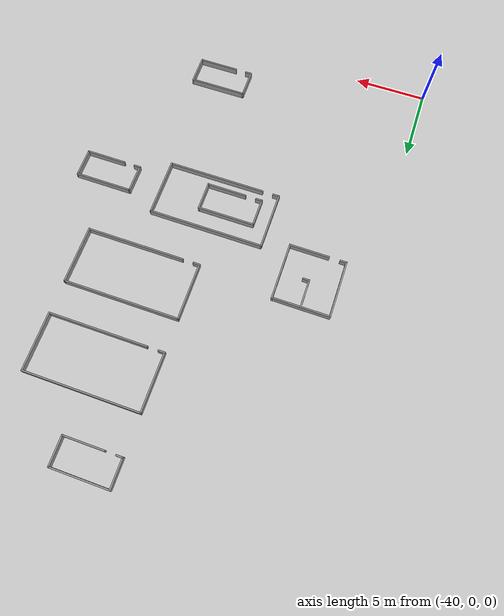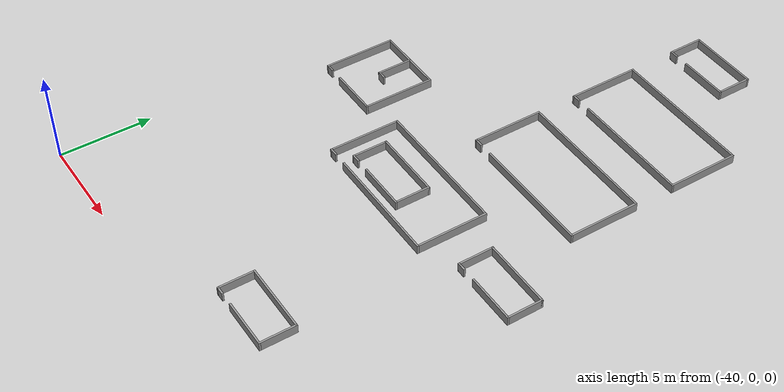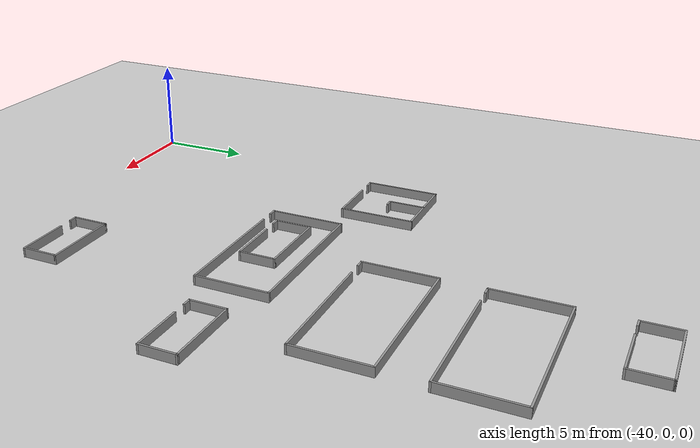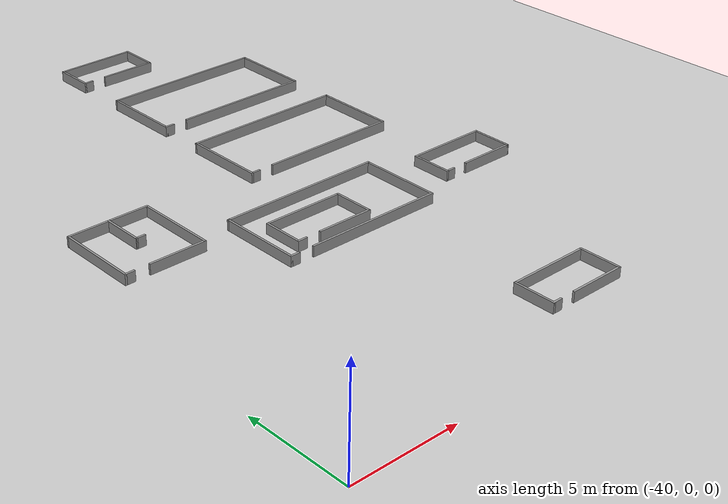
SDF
<sdf version="1.6">
 <world name="default">
  <model name="ground_plane">
   <static>1</static>
   <link name="link">
    <collision name="collision">
     <geometry><plane><normal>0 0 1</normal><size>80 80</size></plane></geometry>
     <surface>
      <contact><collide_bitmask>65535</collide_bitmask></contact>
      <friction><ode><mu>100</mu><mu2>50</mu2></ode></friction>
     </surface>
     <max_contacts>15</max_contacts>
    </collision>
    <visual name="visual">
     <cast_shadows>0</cast_shadows>
     <geometry><plane><normal>0 0 1</normal><size>80 80</size></plane></geometry>
     <material>
      <script><uri>file://media/materials/scripts/gazebo.material</uri><name>Gazebo/Grey</name></script>
     </material>
    </visual>
   </link>
  </model>
  <model name="shape3">
   <pose>-25.1 26.1 0 0 -0 0</pose>
   <link name="Wall_11">
    <collision name="Wall_11_Collision">
     <geometry><box><size>4 0.1 0.5</size></box></geometry>
     <pose>0 0 0.25 0 -0 0</pose>
    </collision>
    <visual name="Wall_11_Visual">
     <pose>0 0 0.25 0 -0 0</pose>
     <geometry><box><size>4 0.1 0.5</size></box></geometry>
     <material>
      <script><uri>file://media/materials/scripts/gazebo.material</uri><name>Gazebo/Grey</name></script>
      <ambient>1 1 1 1</ambient>
     </material>
     <meta><layer>0</layer></meta>
    </visual>
    <pose>-3.95 0 0 0 -0 -1.5708</pose>
   </link>
   <link name="Wall_12">
    <collision name="Wall_12_Collision">
     <geometry><box><size>0.5 0.1 0.5</size></box></geometry>
     <pose>0 0 0.25 0 -0 0</pose>
    </collision>
    <visual name="Wall_12_Visual">
     <pose>0 0 0.25 0 -0 0</pose>
     <geometry><box><size>0.5 0.1 0.5</size></box></geometry>
     <material>
      <script><uri>file://media/materials/scripts/gazebo.material</uri><name>Gazebo/Grey</name></script>
      <ambient>1 1 1 1</ambient>
     </material>
     <meta><layer>0</layer></meta>
    </visual>
    <pose>-3.75 -1.95 0 0 -0 0</pose>
   </link>
   <link name="Wall_7">
    <collision name="Wall_7_Collision">
     <geometry><box><size>8 0.1 0.5</size></box></geometry>
     <pose>0 0 0.25 0 -0 0</pose>
    </collision>
    <visual name="Wall_7_Visual">
     <pose>0 0 0.25 0 -0 0</pose>
     <geometry><box><size>8 0.1 0.5</size></box></geometry>
     <material>
      <script><uri>file://media/materials/scripts/gazebo.material</uri><name>Gazebo/Grey</name></script>
      <ambient>1 1 1 1</ambient>
     </material>
     <meta><layer>0</layer></meta>
    </visual>
    <pose>-0 1.95 0 0 -0 0</pose>
   </link>
   <link name="Wall_8">
    <collision name="Wall_8_Collision">
     <geometry><box><size>4 0.1 0.5</size></box></geometry>
     <pose>0 0 0.25 0 -0 0</pose>
    </collision>
    <visual name="Wall_8_Visual">
     <pose>0 0 0.25 0 -0 0</pose>
     <geometry><box><size>4 0.1 0.5</size></box></geometry>
     <material>
      <script><uri>file://media/materials/scripts/gazebo.material</uri><name>Gazebo/Grey</name></script>
      <ambient>1 1 1 1</ambient>
     </material>
     <meta><layer>0</layer></meta>
    </visual>
    <pose>3.95 0 0 0 -0 -1.5708</pose>
   </link>
   <link name="Wall_9">
    <collision name="Wall_9_Collision">
     <geometry><box><size>6.8 0.1 0.5</size></box></geometry>
     <pose>0 0 0.25 0 -0 0</pose>
    </collision>
    <visual name="Wall_9_Visual">
     <pose>0 0 0.25 0 -0 0</pose>
     <geometry><box><size>6.8 0.1 0.5</size></box></geometry>
     <material>
      <script><uri>file://media/materials/scripts/gazebo.material</uri><name>Gazebo/Grey</name></script>
      <ambient>1 1 1 1</ambient>
     </material>
     <meta><layer>0</layer></meta>
    </visual>
    <pose>0.6 -1.95 0 0 -0 3.14159</pose>
   </link>
   <static>1</static>
  </model>
  <model name="shape4">
   <pose>-36.2 16.6 0 0 -0 0</pose>
   <link name="Wall_0">
    <collision name="Wall_0_Collision">
     <geometry><box><size>4 0.1 0.5</size></box></geometry>
     <pose>0 0 0.25 0 -0 0</pose>
    </collision>
    <visual name="Wall_0_Visual">
     <pose>0 0 0.25 0 -0 0</pose>
     <geometry><box><size>4 0.1 0.5</size></box></geometry>
     <material>
      <script><uri>file://media/materials/scripts/gazebo.material</uri><name>Gazebo/Grey</name></script>
      <ambient>1 1 1 1</ambient>
     </material>
     <meta><layer>0</layer></meta>
    </visual>
    <pose>-1.95 0 0 0 -0 -1.5708</pose>
   </link>
   <link name="Wall_1">
    <collision name="Wall_1_Collision">
     <geometry><box><size>0.5 0.1 0.5</size></box></geometry>
     <pose>0 0 0.25 0 -0 0</pose>
    </collision>
    <visual name="Wall_1_Visual">
     <pose>0 0 0.25 0 -0 0</pose>
     <geometry><box><size>0.5 0.1 0.5</size></box></geometry>
     <material>
      <script><uri>file://media/materials/scripts/gazebo.material</uri><name>Gazebo/Grey</name></script>
      <ambient>1 1 1 1</ambient>
     </material>
     <meta><layer>0</layer></meta>
    </visual>
    <pose>-1.75 -1.95 0 0 -0 0</pose>
   </link>
   <link name="Wall_3">
    <collision name="Wall_3_Collision">
     <geometry><box><size>4 0.1 0.5</size></box></geometry>
     <pose>0 0 0.25 0 -0 0</pose>
    </collision>
    <visual name="Wall_3_Visual">
     <pose>0 0 0.25 0 -0 0</pose>
     <geometry><box><size>4 0.1 0.5</size></box></geometry>
     <material>
      <script><uri>file://media/materials/scripts/gazebo.material</uri><name>Gazebo/Grey</name></script>
      <ambient>1 1 1 1</ambient>
     </material>
     <meta><layer>0</layer></meta>
    </visual>
    <pose>0 1.95 0 0 -0 0</pose>
   </link>
   <link name="Wall_4">
    <collision name="Wall_4_Collision">
     <geometry><box><size>4 0.1 0.5</size></box></geometry>
     <pose>0 0 0.25 0 -0 0</pose>
    </collision>
    <visual name="Wall_4_Visual">
     <pose>0 0 0.25 0 -0 0</pose>
     <geometry><box><size>4 0.1 0.5</size></box></geometry>
     <material>
      <script><uri>file://media/materials/scripts/gazebo.material</uri><name>Gazebo/Grey</name></script>
      <ambient>1 1 1 1</ambient>
     </material>
     <meta><layer>0</layer></meta>
    </visual>
    <pose>1.95 0 0 0 -0 -1.5708</pose>
   </link>
   <link name="Wall_5">
    <collision name="Wall_5_Collision">
     <geometry><box><size>2.8 0.1 0.5</size></box></geometry>
     <pose>0 0 0.25 0 -0 0</pose>
    </collision>
    <visual name="Wall_5_Visual">
     <pose>0 0 0.25 0 -0 0</pose>
     <geometry><box><size>2.8 0.1 0.5</size></box></geometry>
     <material>
      <script><uri>file://media/materials/scripts/gazebo.material</uri><name>Gazebo/Grey</name></script>
      <ambient>1 1 1 1</ambient>
     </material>
     <meta><layer>0</layer></meta>
    </visual>
    <pose>0.6 -1.95 0 0 -0 3.14159</pose>
   </link>
   <link name="Wall_7">
    <collision name="Wall_7_Collision">
     <geometry><box><size>2 0.1 0.5</size></box></geometry>
     <pose>0 0 0.25 0 -0 0</pose>
    </collision>
    <visual name="Wall_7_Visual">
     <pose>0 0 0.25 0 -0 0</pose>
     <geometry><box><size>2 0.1 0.5</size></box></geometry>
     <material>
      <script><uri>file://media/materials/scripts/gazebo.material</uri><name>Gazebo/Grey</name></script>
      <ambient>1 1 1 1</ambient>
     </material>
     <meta><layer>0</layer></meta>
    </visual>
    <pose>0.015 0.991 0 0 -0 -1.5708</pose>
   </link>
   <link name="Wall_8">
    <collision name="Wall_8_Collision">
     <geometry><box><size>0.5 0.1 0.5</size></box></geometry>
     <pose>0 0 0.25 0 -0 0</pose>
    </collision>
    <visual name="Wall_8_Visual">
     <pose>0 0 0.25 0 -0 0</pose>
     <geometry><box><size>0.5 0.1 0.5</size></box></geometry>
     <material>
      <script><uri>file://media/materials/scripts/gazebo.material</uri><name>Gazebo/Grey</name></script>
      <ambient>1 1 1 1</ambient>
     </material>
     <meta><layer>0</layer></meta>
    </visual>
    <pose>0.215 0.041 0 0 -0 0</pose>
   </link>
   <static>1</static>
  </model>
  <model name="shape2">
   <pose>-27.1 31.7 0 0 -0 0</pose>
   <link name="Wall_0">
    <collision name="Wall_0_Collision">
     <geometry><box><size>3.98685 0.1 0.5</size></box></geometry>
     <pose>0 0 0.25 0 -0 0</pose>
    </collision>
    <visual name="Wall_0_Visual">
     <pose>0 0 0.25 0 -0 0</pose>
     <geometry><box><size>3.98685 0.1 0.5</size></box></geometry>
     <material>
      <script><uri>file://media/materials/scripts/gazebo.material</uri><name>Gazebo/Grey</name></script>
      <ambient>1 1 1 1</ambient>
     </material>
     <meta><layer>0</layer></meta>
    </visual>
    <pose>0.003288 0.95 0 0 -0 0</pose>
   </link>
   <link name="Wall_1">
    <collision name="Wall_1_Collision">
     <geometry><box><size>2 0.1 0.5</size></box></geometry>
     <pose>0 0 0.25 0 -0 0</pose>
    </collision>
    <visual name="Wall_1_Visual">
     <pose>0 0 0.25 0 -0 0</pose>
     <geometry><box><size>2 0.1 0.5</size></box></geometry>
     <material>
      <script><uri>file://media/materials/scripts/gazebo.material</uri><name>Gazebo/Grey</name></script>
      <ambient>1 1 1 1</ambient>
     </material>
     <meta><layer>0</layer></meta>
    </visual>
    <pose>1.94671 0 0 0 -0 -1.5708</pose>
   </link>
   <link name="Wall_2">
    <collision name="Wall_2_Collision">
     <geometry><box><size>2.8 0.1 0.5</size></box></geometry>
     <pose>0 0 0.25 0 -0 0</pose>
    </collision>
    <visual name="Wall_2_Visual">
     <pose>0 0 0.25 0 -0 0</pose>
     <geometry><box><size>2.8 0.1 0.5</size></box></geometry>
     <material>
      <script><uri>file://media/materials/scripts/gazebo.material</uri><name>Gazebo/Grey</name></script>
      <ambient>1 1 1 1</ambient>
     </material>
     <meta><layer>0</layer></meta>
    </visual>
    <pose>0.596712 -0.95 0 0 -0 3.14159</pose>
   </link>
   <link name="Wall_4">
    <collision name="Wall_4_Collision">
     <geometry><box><size>2 0.1 0.5</size></box></geometry>
     <pose>0 0 0.25 0 -0 0</pose>
    </collision>
    <visual name="Wall_4_Visual">
     <pose>0 0 0.25 0 -0 0</pose>
     <geometry><box><size>2 0.1 0.5</size></box></geometry>
     <material>
      <script><uri>file://media/materials/scripts/gazebo.material</uri><name>Gazebo/Grey</name></script>
      <ambient>1 1 1 1</ambient>
     </material>
     <meta><layer>0</layer></meta>
    </visual>
    <pose>-1.94671 0 0 0 -0 -1.5708</pose>
   </link>
   <link name="Wall_5">
    <collision name="Wall_5_Collision">
     <geometry><box><size>0.5 0.1 0.5</size></box></geometry>
     <pose>0 0 0.25 0 -0 0</pose>
    </collision>
    <visual name="Wall_5_Visual">
     <pose>0 0 0.25 0 -0 0</pose>
     <geometry><box><size>0.5 0.1 0.5</size></box></geometry>
     <material>
      <script><uri>file://media/materials/scripts/gazebo.material</uri><name>Gazebo/Grey</name></script>
      <ambient>1 1 1 1</ambient>
     </material>
     <meta><layer>0</layer></meta>
    </visual>
    <pose>-1.74671 -0.95 0 0 -0 0</pose>
   </link>
   <static>1</static>
  </model>
  <model name="shape3">
   <pose>-28.5 13.4 0 0 -0 0</pose>
   <link name="Wall_11">
    <collision name="Wall_11_Collision">
     <geometry><box><size>4 0.1 0.5</size></box></geometry>
     <pose>0 0 0.25 0 -0 0</pose>
    </collision>
    <visual name="Wall_11_Visual">
     <pose>0 0 0.25 0 -0 0</pose>
     <geometry><box><size>4 0.1 0.5</size></box></geometry>
     <material>
      <script><uri>file://media/materials/scripts/gazebo.material</uri><name>Gazebo/Grey</name></script>
      <ambient>1 1 1 1</ambient>
     </material>
     <meta><layer>0</layer></meta>
    </visual>
    <pose>-3.95 0 0 0 -0 -1.5708</pose>
   </link>
   <link name="Wall_12">
    <collision name="Wall_12_Collision">
     <geometry><box><size>0.5 0.1 0.5</size></box></geometry>
     <pose>0 0 0.25 0 -0 0</pose>
    </collision>
    <visual name="Wall_12_Visual">
     <pose>0 0 0.25 0 -0 0</pose>
     <geometry><box><size>0.5 0.1 0.5</size></box></geometry>
     <material>
      <script><uri>file://media/materials/scripts/gazebo.material</uri><name>Gazebo/Grey</name></script>
      <ambient>1 1 1 1</ambient>
     </material>
     <meta><layer>0</layer></meta>
    </visual>
    <pose>-3.75 -1.95 0 0 -0 0</pose>
   </link>
   <link name="Wall_7">
    <collision name="Wall_7_Collision">
     <geometry><box><size>8 0.1 0.5</size></box></geometry>
     <pose>0 0 0.25 0 -0 0</pose>
    </collision>
    <visual name="Wall_7_Visual">
     <pose>0 0 0.25 0 -0 0</pose>
     <geometry><box><size>8 0.1 0.5</size></box></geometry>
     <material>
      <script><uri>file://media/materials/scripts/gazebo.material</uri><name>Gazebo/Grey</name></script>
      <ambient>1 1 1 1</ambient>
     </material>
     <meta><layer>0</layer></meta>
    </visual>
    <pose>-0 1.95 0 0 -0 0</pose>
   </link>
   <link name="Wall_8">
    <collision name="Wall_8_Collision">
     <geometry><box><size>4 0.1 0.5</size></box></geometry>
     <pose>0 0 0.25 0 -0 0</pose>
    </collision>
    <visual name="Wall_8_Visual">
     <pose>0 0 0.25 0 -0 0</pose>
     <geometry><box><size>4 0.1 0.5</size></box></geometry>
     <material>
      <script><uri>file://media/materials/scripts/gazebo.material</uri><name>Gazebo/Grey</name></script>
      <ambient>1 1 1 1</ambient>
     </material>
     <meta><layer>0</layer></meta>
    </visual>
    <pose>3.95 0 0 0 -0 -1.5708</pose>
   </link>
   <link name="Wall_9">
    <collision name="Wall_9_Collision">
     <geometry><box><size>6.8 0.1 0.5</size></box></geometry>
     <pose>0 0 0.25 0 -0 0</pose>
    </collision>
    <visual name="Wall_9_Visual">
     <pose>0 0 0.25 0 -0 0</pose>
     <geometry><box><size>6.8 0.1 0.5</size></box></geometry>
     <material>
      <script><uri>file://media/materials/scripts/gazebo.material</uri><name>Gazebo/Grey</name></script>
      <ambient>1 1 1 1</ambient>
     </material>
     <meta><layer>0</layer></meta>
    </visual>
    <pose>0.6 -1.95 0 0 -0 3.14159</pose>
   </link>
   <static>1</static>
  </model>
  <model name="shape2">
   <pose>-20.6 13.4 0 0 -0 0</pose>
   <link name="Wall_0">
    <collision name="Wall_0_Collision">
     <geometry><box><size>3.98685 0.1 0.5</size></box></geometry>
     <pose>0 0 0.25 0 -0 0</pose>
    </collision>
    <visual name="Wall_0_Visual">
     <pose>0 0 0.25 0 -0 0</pose>
     <geometry><box><size>3.98685 0.1 0.5</size></box></geometry>
     <material>
      <script><uri>file://media/materials/scripts/gazebo.material</uri><name>Gazebo/Grey</name></script>
      <ambient>1 1 1 1</ambient>
     </material>
     <meta><layer>0</layer></meta>
    </visual>
    <pose>0.003288 0.95 0 0 -0 0</pose>
   </link>
   <link name="Wall_1">
    <collision name="Wall_1_Collision">
     <geometry><box><size>2 0.1 0.5</size></box></geometry>
     <pose>0 0 0.25 0 -0 0</pose>
    </collision>
    <visual name="Wall_1_Visual">
     <pose>0 0 0.25 0 -0 0</pose>
     <geometry><box><size>2 0.1 0.5</size></box></geometry>
     <material>
      <script><uri>file://media/materials/scripts/gazebo.material</uri><name>Gazebo/Grey</name></script>
      <ambient>1 1 1 1</ambient>
     </material>
     <meta><layer>0</layer></meta>
    </visual>
    <pose>1.94671 0 0 0 -0 -1.5708</pose>
   </link>
   <link name="Wall_2">
    <collision name="Wall_2_Collision">
     <geometry><box><size>2.8 0.1 0.5</size></box></geometry>
     <pose>0 0 0.25 0 -0 0</pose>
    </collision>
    <visual name="Wall_2_Visual">
     <pose>0 0 0.25 0 -0 0</pose>
     <geometry><box><size>2.8 0.1 0.5</size></box></geometry>
     <material>
      <script><uri>file://media/materials/scripts/gazebo.material</uri><name>Gazebo/Grey</name></script>
      <ambient>1 1 1 1</ambient>
     </material>
     <meta><layer>0</layer></meta>
    </visual>
    <pose>0.596712 -0.95 0 0 -0 3.14159</pose>
   </link>
   <link name="Wall_4">
    <collision name="Wall_4_Collision">
     <geometry><box><size>2 0.1 0.5</size></box></geometry>
     <pose>0 0 0.25 0 -0 0</pose>
    </collision>
    <visual name="Wall_4_Visual">
     <pose>0 0 0.25 0 -0 0</pose>
     <geometry><box><size>2 0.1 0.5</size></box></geometry>
     <material>
      <script><uri>file://media/materials/scripts/gazebo.material</uri><name>Gazebo/Grey</name></script>
      <ambient>1 1 1 1</ambient>
     </material>
     <meta><layer>0</layer></meta>
    </visual>
    <pose>-1.94671 0 0 0 -0 -1.5708</pose>
   </link>
   <link name="Wall_5">
    <collision name="Wall_5_Collision">
     <geometry><box><size>0.5 0.1 0.5</size></box></geometry>
     <pose>0 0 0.25 0 -0 0</pose>
    </collision>
    <visual name="Wall_5_Visual">
     <pose>0 0 0.25 0 -0 0</pose>
     <geometry><box><size>0.5 0.1 0.5</size></box></geometry>
     <material>
      <script><uri>file://media/materials/scripts/gazebo.material</uri><name>Gazebo/Grey</name></script>
      <ambient>1 1 1 1</ambient>
     </material>
     <meta><layer>0</layer></meta>
    </visual>
    <pose>-1.74671 -0.95 0 0 -0 0</pose>
   </link>
   <static>1</static>
  </model>
  <model name="shape3">
   <pose>-25.1 19.9 0 0 -0 0</pose>
   <link name="Wall_11">
    <collision name="Wall_11_Collision">
     <geometry><box><size>4 0.1 0.5</size></box></geometry>
     <pose>0 0 0.25 0 -0 0</pose>
    </collision>
    <visual name="Wall_11_Visual">
     <pose>0 0 0.25 0 -0 0</pose>
     <geometry><box><size>4 0.1 0.5</size></box></geometry>
     <material>
      <script><uri>file://media/materials/scripts/gazebo.material</uri><name>Gazebo/Grey</name></script>
      <ambient>1 1 1 1</ambient>
     </material>
     <meta><layer>0</layer></meta>
    </visual>
    <pose>-3.95 0 0 0 -0 -1.5708</pose>
   </link>
   <link name="Wall_12">
    <collision name="Wall_12_Collision">
     <geometry><box><size>0.5 0.1 0.5</size></box></geometry>
     <pose>0 0 0.25 0 -0 0</pose>
    </collision>
    <visual name="Wall_12_Visual">
     <pose>0 0 0.25 0 -0 0</pose>
     <geometry><box><size>0.5 0.1 0.5</size></box></geometry>
     <material>
      <script><uri>file://media/materials/scripts/gazebo.material</uri><name>Gazebo/Grey</name></script>
      <ambient>1 1 1 1</ambient>
     </material>
     <meta><layer>0</layer></meta>
    </visual>
    <pose>-3.75 -1.95 0 0 -0 0</pose>
   </link>
   <link name="Wall_7">
    <collision name="Wall_7_Collision">
     <geometry><box><size>8 0.1 0.5</size></box></geometry>
     <pose>0 0 0.25 0 -0 0</pose>
    </collision>
    <visual name="Wall_7_Visual">
     <pose>0 0 0.25 0 -0 0</pose>
     <geometry><box><size>8 0.1 0.5</size></box></geometry>
     <material>
      <script><uri>file://media/materials/scripts/gazebo.material</uri><name>Gazebo/Grey</name></script>
      <ambient>1 1 1 1</ambient>
     </material>
     <meta><layer>0</layer></meta>
    </visual>
    <pose>-0 1.95 0 0 -0 0</pose>
   </link>
   <link name="Wall_8">
    <collision name="Wall_8_Collision">
     <geometry><box><size>4 0.1 0.5</size></box></geometry>
     <pose>0 0 0.25 0 -0 0</pose>
    </collision>
    <visual name="Wall_8_Visual">
     <pose>0 0 0.25 0 -0 0</pose>
     <geometry><box><size>4 0.1 0.5</size></box></geometry>
     <material>
      <script><uri>file://media/materials/scripts/gazebo.material</uri><name>Gazebo/Grey</name></script>
      <ambient>1 1 1 1</ambient>
     </material>
     <meta><layer>0</layer></meta>
    </visual>
    <pose>3.95 0 0 0 -0 -1.5708</pose>
   </link>
   <link name="Wall_9">
    <collision name="Wall_9_Collision">
     <geometry><box><size>6.8 0.1 0.5</size></box></geometry>
     <pose>0 0 0.25 0 -0 0</pose>
    </collision>
    <visual name="Wall_9_Visual">
     <pose>0 0 0.25 0 -0 0</pose>
     <geometry><box><size>6.8 0.1 0.5</size></box></geometry>
     <material>
      <script><uri>file://media/materials/scripts/gazebo.material</uri><name>Gazebo/Grey</name></script>
      <ambient>1 1 1 1</ambient>
     </material>
     <meta><layer>0</layer></meta>
    </visual>
    <pose>0.6 -1.95 0 0 -0 3.14159</pose>
   </link>
   <static>1</static>
  </model>
  <model name="shape2">
   <pose>-29.5 13.1 0 0 -0 0</pose>
   <link name="Wall_0">
    <collision name="Wall_0_Collision">
     <geometry><box><size>3.98685 0.1 0.5</size></box></geometry>
     <pose>0 0 0.25 0 -0 0</pose>
    </collision>
    <visual name="Wall_0_Visual">
     <pose>0 0 0.25 0 -0 0</pose>
     <geometry><box><size>3.98685 0.1 0.5</size></box></geometry>
     <material>
      <script><uri>file://media/materials/scripts/gazebo.material</uri><name>Gazebo/Grey</name></script>
      <ambient>1 1 1 1</ambient>
     </material>
     <meta><layer>0</layer></meta>
    </visual>
    <pose>0.003288 0.95 0 0 -0 0</pose>
   </link>
   <link name="Wall_1">
    <collision name="Wall_1_Collision">
     <geometry><box><size>2 0.1 0.5</size></box></geometry>
     <pose>0 0 0.25 0 -0 0</pose>
    </collision>
    <visual name="Wall_1_Visual">
     <pose>0 0 0.25 0 -0 0</pose>
     <geometry><box><size>2 0.1 0.5</size></box></geometry>
     <material>
      <script><uri>file://media/materials/scripts/gazebo.material</uri><name>Gazebo/Grey</name></script>
      <ambient>1 1 1 1</ambient>
     </material>
     <meta><layer>0</layer></meta>
    </visual>
    <pose>1.94671 0 0 0 -0 -1.5708</pose>
   </link>
   <link name="Wall_2">
    <collision name="Wall_2_Collision">
     <geometry><box><size>2.8 0.1 0.5</size></box></geometry>
     <pose>0 0 0.25 0 -0 0</pose>
    </collision>
    <visual name="Wall_2_Visual">
     <pose>0 0 0.25 0 -0 0</pose>
     <geometry><box><size>2.8 0.1 0.5</size></box></geometry>
     <material>
      <script><uri>file://media/materials/scripts/gazebo.material</uri><name>Gazebo/Grey</name></script>
      <ambient>1 1 1 1</ambient>
     </material>
     <meta><layer>0</layer></meta>
    </visual>
    <pose>0.596712 -0.95 0 0 -0 3.14159</pose>
   </link>
   <link name="Wall_4">
    <collision name="Wall_4_Collision">
     <geometry><box><size>2 0.1 0.5</size></box></geometry>
     <pose>0 0 0.25 0 -0 0</pose>
    </collision>
    <visual name="Wall_4_Visual">
     <pose>0 0 0.25 0 -0 0</pose>
     <geometry><box><size>2 0.1 0.5</size></box></geometry>
     <material>
      <script><uri>file://media/materials/scripts/gazebo.material</uri><name>Gazebo/Grey</name></script>
      <ambient>1 1 1 1</ambient>
     </material>
     <meta><layer>0</layer></meta>
    </visual>
    <pose>-1.94671 0 0 0 -0 -1.5708</pose>
   </link>
   <link name="Wall_5">
    <collision name="Wall_5_Collision">
     <geometry><box><size>0.5 0.1 0.5</size></box></geometry>
     <pose>0 0 0.25 0 -0 0</pose>
    </collision>
    <visual name="Wall_5_Visual">
     <pose>0 0 0.25 0 -0 0</pose>
     <geometry><box><size>0.5 0.1 0.5</size></box></geometry>
     <material>
      <script><uri>file://media/materials/scripts/gazebo.material</uri><name>Gazebo/Grey</name></script>
      <ambient>1 1 1 1</ambient>
     </material>
     <meta><layer>0</layer></meta>
    </visual>
    <pose>-1.74671 -0.95 0 0 -0 0</pose>
   </link>
   <static>1</static>
  </model>
  <model name="shape2">
   <pose>-25.4 3.3 0 0 -0 0</pose>
   <link name="Wall_0">
    <collision name="Wall_0_Collision">
     <geometry><box><size>3.98685 0.1 0.5</size></box></geometry>
     <pose>0 0 0.25 0 -0 0</pose>
    </collision>
    <visual name="Wall_0_Visual">
     <pose>0 0 0.25 0 -0 0</pose>
     <geometry><box><size>3.98685 0.1 0.5</size></box></geometry>
     <material>
      <script><uri>file://media/materials/scripts/gazebo.material</uri><name>Gazebo/Grey</name></script>
      <ambient>1 1 1 1</ambient>
     </material>
     <meta><layer>0</layer></meta>
    </visual>
    <pose>0.003288 0.95 0 0 -0 0</pose>
   </link>
   <link name="Wall_1">
    <collision name="Wall_1_Collision">
     <geometry><box><size>2 0.1 0.5</size></box></geometry>
     <pose>0 0 0.25 0 -0 0</pose>
    </collision>
    <visual name="Wall_1_Visual">
     <pose>0 0 0.25 0 -0 0</pose>
     <geometry><box><size>2 0.1 0.5</size></box></geometry>
     <material>
      <script><uri>file://media/materials/scripts/gazebo.material</uri><name>Gazebo/Grey</name></script>
      <ambient>1 1 1 1</ambient>
     </material>
     <meta><layer>0</layer></meta>
    </visual>
    <pose>1.94671 0 0 0 -0 -1.5708</pose>
   </link>
   <link name="Wall_2">
    <collision name="Wall_2_Collision">
     <geometry><box><size>2.8 0.1 0.5</size></box></geometry>
     <pose>0 0 0.25 0 -0 0</pose>
    </collision>
    <visual name="Wall_2_Visual">
     <pose>0 0 0.25 0 -0 0</pose>
     <geometry><box><size>2.8 0.1 0.5</size></box></geometry>
     <material>
      <script><uri>file://media/materials/scripts/gazebo.material</uri><name>Gazebo/Grey</name></script>
      <ambient>1 1 1 1</ambient>
     </material>
     <meta><layer>0</layer></meta>
    </visual>
    <pose>0.596712 -0.95 0 0 -0 3.14159</pose>
   </link>
   <link name="Wall_4">
    <collision name="Wall_4_Collision">
     <geometry><box><size>2 0.1 0.5</size></box></geometry>
     <pose>0 0 0.25 0 -0 0</pose>
    </collision>
    <visual name="Wall_4_Visual">
     <pose>0 0 0.25 0 -0 0</pose>
     <geometry><box><size>2 0.1 0.5</size></box></geometry>
     <material>
      <script><uri>file://media/materials/scripts/gazebo.material</uri><name>Gazebo/Grey</name></script>
      <ambient>1 1 1 1</ambient>
     </material>
     <meta><layer>0</layer></meta>
    </visual>
    <pose>-1.94671 0 0 0 -0 -1.5708</pose>
   </link>
   <link name="Wall_5">
    <collision name="Wall_5_Collision">
     <geometry><box><size>0.5 0.1 0.5</size></box></geometry>
     <pose>0 0 0.25 0 -0 0</pose>
    </collision>
    <visual name="Wall_5_Visual">
     <pose>0 0 0.25 0 -0 0</pose>
     <geometry><box><size>0.5 0.1 0.5</size></box></geometry>
     <material>
      <script><uri>file://media/materials/scripts/gazebo.material</uri><name>Gazebo/Grey</name></script>
      <ambient>1 1 1 1</ambient>
     </material>
     <meta><layer>0</layer></meta>
    </visual>
    <pose>-1.74671 -0.95 0 0 -0 0</pose>
   </link>
   <static>1</static>
  </model>
 </world>
</sdf>
